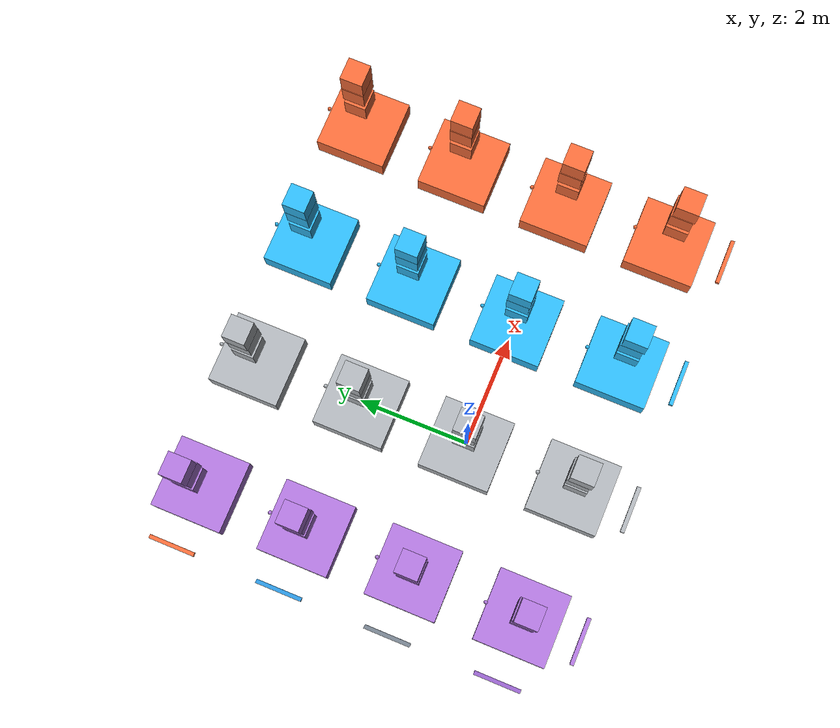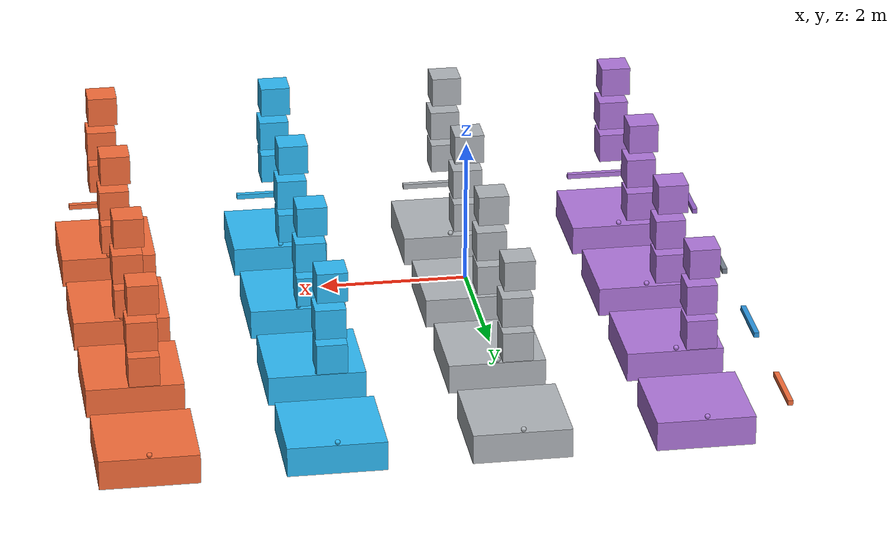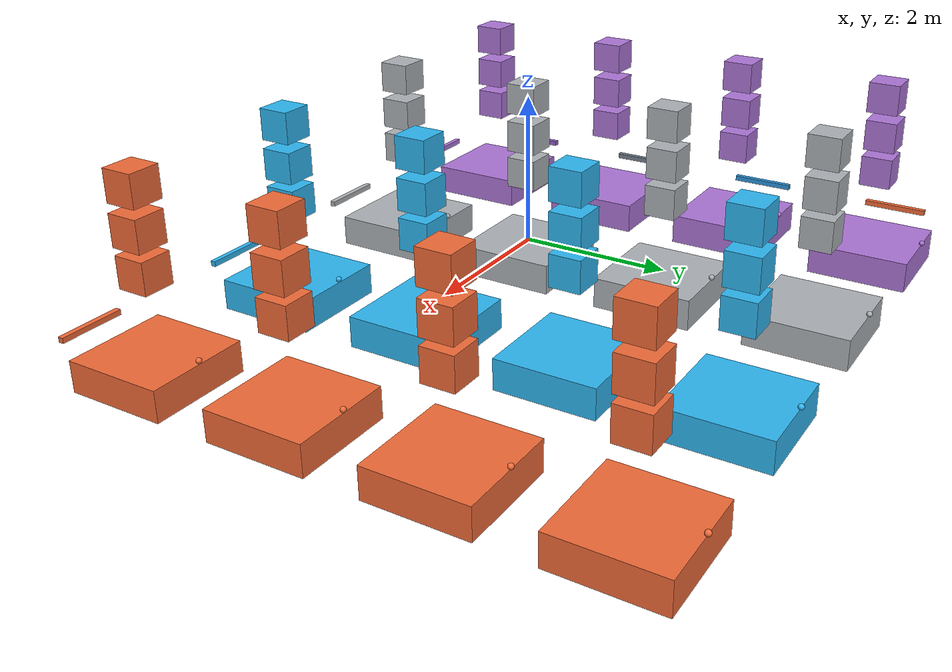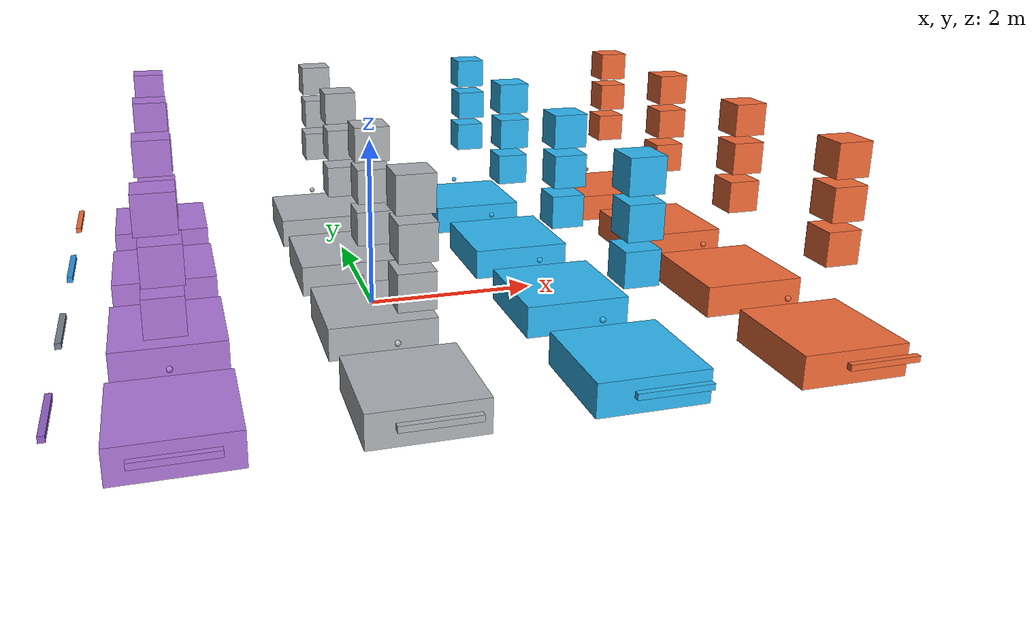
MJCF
<mujoco model="solref_solimp_grid_demo">
  <compiler angle="degree" coordinate="local"/>

  <option
    timestep="0.001"
    gravity="0 0 -9.81"
    integrator="implicitfast"
    solver="Newton"
    iterations="80"
    tolerance="1e-10">
    <flag contact="enable"/>
  </option>

  <default>
    <geom friction="1.2 0.005 0.0001"/>

    <default class="slow_ref_soft_imp">
      <geom solref="0.12 1" solimp="0.001 0.55 0.15 0.5 2"/>
    </default>
    <default class="default_ref_soft_imp">
      <geom solref="0.02 1" solimp="0.001 0.55 0.15 0.5 2"/>
    </default>
    <default class="fast_ref_soft_imp">
      <geom solref="0.004 1" solimp="0.001 0.55 0.15 0.5 2"/>
    </default>
    <default class="very_fast_ref_soft_imp">
      <geom solref="0.004 0.25" solimp="0.001 0.55 0.15 0.5 2"/>
    </default>

    <default class="slow_ref_default_imp">
      <geom solref="0.12 1" solimp="0.9 0.95 0.001 0.5 2"/>
    </default>
    <default class="default_ref_default_imp">
      <geom solref="0.02 1" solimp="0.9 0.95 0.001 0.5 2"/>
    </default>
    <default class="fast_ref_default_imp">
      <geom solref="0.004 1" solimp="0.9 0.95 0.001 0.5 2"/>
    </default>
    <default class="very_fast_ref_default_imp">
      <geom solref="0.004 0.25" solimp="0.9 0.95 0.001 0.5 2"/>
    </default>

    <default class="slow_ref_rigid_imp">
      <geom solref="0.12 1" solimp="0.995 0.999 0.0002 0.5 2"/>
    </default>
    <default class="default_ref_rigid_imp">
      <geom solref="0.02 1" solimp="0.995 0.999 0.0002 0.5 2"/>
    </default>
    <default class="fast_ref_rigid_imp">
      <geom solref="0.004 1" solimp="0.995 0.999 0.0002 0.5 2"/>
    </default>
    <default class="very_fast_ref_rigid_imp">
      <geom solref="0.004 0.25" solimp="0.995 0.999 0.0002 0.5 2"/>
    </default>

    <default class="slow_ref_very_rigid_imp">
      <geom solref="0.12 1" solimp="0.9999 0.99999 0.00005 0.5 2"/>
    </default>
    <default class="default_ref_very_rigid_imp">
      <geom solref="0.02 1" solimp="0.9999 0.99999 0.00005 0.5 2"/>
    </default>
    <default class="fast_ref_very_rigid_imp">
      <geom solref="0.004 1" solimp="0.9999 0.99999 0.00005 0.5 2"/>
    </default>
    <default class="very_fast_ref_very_rigid_imp">
      <geom solref="0.004 0.25" solimp="0.9999 0.99999 0.00005 0.5 2"/>
    </default>
  </default>

  <visual>
    <global azimuth="135" elevation="-25"/>
    <quality shadowsize="2048"/>
  </visual>

  <asset>
    <texture
      name="grid_texture"
      type="2d"
      builtin="checker"
      rgb1="0.16 0.16 0.16"
      rgb2="0.82 0.82 0.82"
      width="512"
      height="512"/>

    <material
      name="grid_material"
      texture="grid_texture"
      texrepeat="14 14"
      reflectance="0.12"/>

    <!-- Cube and pad color encode solref column. -->
    <material name="cube_slow_ref_mat" rgba="0.68 0.46 0.85 1"/>
    <material name="cube_default_ref_mat" rgba="0.68 0.70 0.72 1"/>
    <material name="cube_fast_ref_mat" rgba="0.18 0.72 0.95 1"/>
    <material name="cube_very_fast_ref_mat" rgba="0.95 0.42 0.22 1"/>
  </asset>

  <worldbody>
    <light name="key_light" pos="0 -6 7" dir="0 1 -1" diffuse="0.9 0.9 0.9"/>
    <light name="fill_light" pos="-5 3 4" dir="1 -1 -1" diffuse="0.35 0.35 0.35"/>

    <camera name="grid_view" pos="0.6 -10.2 5.6" xyaxes="1 0 0 0 0.50 0.866"/>
    <camera name="low_side" pos="0.6 -10.8 1.9" xyaxes="1 0 0 0 0.18 0.984"/>

    <!-- Visual-only grid plane. Contact happens on the sixteen colored pads. -->

    <!--
      MuJoCo XML has no arbitrary text geom. These named sites act as labels
      when the viewer's site labels are enabled.
    -->
    <site name="solref_0.12" type="box" pos="-2.4 -3.05 0.04" size="0.42 0.035 0.035" rgba="0.68 0.46 0.85 1"/>
    <site name="solref_0.02" type="box" pos="0 -3.05 0.04" size="0.42 0.035 0.035" rgba="0.68 0.70 0.72 1"/>
    <site name="solref_0.004" type="box" pos="2.4 -3.05 0.04" size="0.42 0.035 0.035" rgba="0.18 0.72 0.95 1"/>
    <site name="solref_0.004_0.25" type="box" pos="4.8 -3.05 0.04" size="0.42 0.035 0.035" rgba="0.95 0.42 0.22 1"/>

    <site name="solimp_0.001_0.55_0.15" type="box" pos="-3.55 -2.0 0.04" size="0.035 0.42 0.035" rgba="0.58 0.38 0.78 1"/>
    <site name="solimp_0.9_0.95_0.001" type="box" pos="-3.55 0 0.04" size="0.035 0.42 0.035" rgba="0.46 0.50 0.55 1"/>
    <site name="solimp_0.995_0.999_0.0002" type="box" pos="-3.55 2.0 0.04" size="0.035 0.42 0.035" rgba="0.17 0.58 0.86 1"/>
    <site name="solimp_0.9999_0.99999_0.00005" type="box" pos="-3.55 4.0 0.04" size="0.035 0.42 0.035" rgba="0.95 0.42 0.22 1"/>

    <!--
      Cell labels show the converted stiffness/damping-like values at
      d(r)=d_width:
        k = 1 / (d_width * timeconst^2 * dampratio^2)
        b = 2 / (d_width * timeconst)
    -->
    <site name="k126_b30" type="sphere" pos="-2.4 -1.33 0.06" size="0.035" rgba="0.68 0.46 0.85 1"/>
    <site name="k4.5e3_b182" type="sphere" pos="0 -1.33 0.06" size="0.035" rgba="0.68 0.70 0.72 1"/>
    <site name="k1.1e5_b909" type="sphere" pos="2.4 -1.33 0.06" size="0.035" rgba="0.18 0.72 0.95 1"/>
    <site name="k1.8e6_b909" type="sphere" pos="4.8 -1.33 0.06" size="0.035" rgba="0.95 0.42 0.22 1"/>

    <site name="k73_b18" type="sphere" pos="-2.4 0.67 0.06" size="0.035" rgba="0.68 0.46 0.85 1"/>
    <site name="k2.6e3_b105" type="sphere" pos="0 0.67 0.06" size="0.035" rgba="0.68 0.70 0.72 1"/>
    <site name="k6.6e4_b526" type="sphere" pos="2.4 0.67 0.06" size="0.035" rgba="0.18 0.72 0.95 1"/>
    <site name="k1.1e6_b526" type="sphere" pos="4.8 0.67 0.06" size="0.035" rgba="0.95 0.42 0.22 1"/>

    <site name="k70_b17" type="sphere" pos="-2.4 2.67 0.06" size="0.035" rgba="0.68 0.46 0.85 1"/>
    <site name="k2.5e3_b100" type="sphere" pos="0 2.67 0.06" size="0.035" rgba="0.68 0.70 0.72 1"/>
    <site name="k6.3e4_b501" type="sphere" pos="2.4 2.67 0.06" size="0.035" rgba="0.18 0.72 0.95 1"/>
    <site name="k1.0e6_b501" type="sphere" pos="4.8 2.67 0.06" size="0.035" rgba="0.95 0.42 0.22 1"/>

    <site name="k69_b17" type="sphere" pos="-2.4 4.67 0.06" size="0.035" rgba="0.68 0.46 0.85 1"/>
    <site name="k2.50e3_b100" type="sphere" pos="0 4.67 0.06" size="0.035" rgba="0.68 0.70 0.72 1"/>
    <site name="k6.3e4_b500" type="sphere" pos="2.4 4.67 0.06" size="0.035" rgba="0.18 0.72 0.95 1"/>
    <site name="k1.0e6_b500" type="sphere" pos="4.8 4.67 0.06" size="0.035" rgba="0.95 0.42 0.22 1"/>

    <!-- Row 1, front: soft solimp onset. -->
    <!-- Pads are thick, with their top surfaces at z=0, so very soft contacts can visibly sink without tunneling through. -->
    <geom name="pad_soft_imp_slow_ref" class="slow_ref_soft_imp" type="box" pos="-2.4 -2.0 -0.20" size="0.65 0.65 0.20" material="cube_slow_ref_mat"/>
    <body name="soft_imp_slow_ref_bottom" pos="-2.400 -2.000 1.000">
      <freejoint/>
      <geom name="soft_imp_slow_ref_bottom_geom" class="slow_ref_soft_imp" type="box" size="0.20 0.20 0.20" mass="0.8" material="cube_slow_ref_mat"/>
    </body>
    <body name="soft_imp_slow_ref_middle" pos="-2.385 -1.990 1.500">
      <freejoint/>
      <geom name="soft_imp_slow_ref_middle_geom" class="slow_ref_soft_imp" type="box" size="0.20 0.20 0.20" mass="0.8" material="cube_slow_ref_mat"/>
    </body>
    <body name="soft_imp_slow_ref_top" pos="-2.412 -2.010 2.000">
      <freejoint/>
      <geom name="soft_imp_slow_ref_top_geom" class="slow_ref_soft_imp" type="box" size="0.20 0.20 0.20" mass="0.8" material="cube_slow_ref_mat"/>
    </body>

    <geom name="pad_soft_imp_default_ref" class="default_ref_soft_imp" type="box" pos="0 -2.0 -0.20" size="0.65 0.65 0.20" material="cube_default_ref_mat"/>
    <body name="soft_imp_default_ref_bottom" pos="0.000 -2.000 1.000">
      <freejoint/>
      <geom name="soft_imp_default_ref_bottom_geom" class="default_ref_soft_imp" type="box" size="0.20 0.20 0.20" mass="0.8" material="cube_default_ref_mat"/>
    </body>
    <body name="soft_imp_default_ref_middle" pos="0.015 -1.990 1.500">
      <freejoint/>
      <geom name="soft_imp_default_ref_middle_geom" class="default_ref_soft_imp" type="box" size="0.20 0.20 0.20" mass="0.8" material="cube_default_ref_mat"/>
    </body>
    <body name="soft_imp_default_ref_top" pos="-0.012 -2.010 2.000">
      <freejoint/>
      <geom name="soft_imp_default_ref_top_geom" class="default_ref_soft_imp" type="box" size="0.20 0.20 0.20" mass="0.8" material="cube_default_ref_mat"/>
    </body>

    <geom name="pad_soft_imp_fast_ref" class="fast_ref_soft_imp" type="box" pos="2.4 -2.0 -0.20" size="0.65 0.65 0.20" material="cube_fast_ref_mat"/>
    <body name="soft_imp_fast_ref_bottom" pos="2.400 -2.000 1.000">
      <freejoint/>
      <geom name="soft_imp_fast_ref_bottom_geom" class="fast_ref_soft_imp" type="box" size="0.20 0.20 0.20" mass="0.8" material="cube_fast_ref_mat"/>
    </body>
    <body name="soft_imp_fast_ref_middle" pos="2.415 -1.990 1.500">
      <freejoint/>
      <geom name="soft_imp_fast_ref_middle_geom" class="fast_ref_soft_imp" type="box" size="0.20 0.20 0.20" mass="0.8" material="cube_fast_ref_mat"/>
    </body>
    <body name="soft_imp_fast_ref_top" pos="2.388 -2.010 2.000">
      <freejoint/>
      <geom name="soft_imp_fast_ref_top_geom" class="fast_ref_soft_imp" type="box" size="0.20 0.20 0.20" mass="0.8" material="cube_fast_ref_mat"/>
    </body>

    <geom name="pad_soft_imp_very_fast_ref" class="very_fast_ref_soft_imp" type="box" pos="4.8 -2.0 -0.20" size="0.65 0.65 0.20" material="cube_very_fast_ref_mat"/>
    <body name="soft_imp_very_fast_ref_bottom" pos="4.800 -2.000 1.000">
      <freejoint/>
      <geom name="soft_imp_very_fast_ref_bottom_geom" class="very_fast_ref_soft_imp" type="box" size="0.20 0.20 0.20" mass="0.8" material="cube_very_fast_ref_mat"/>
    </body>
    <body name="soft_imp_very_fast_ref_middle" pos="4.815 -1.990 1.500">
      <freejoint/>
      <geom name="soft_imp_very_fast_ref_middle_geom" class="very_fast_ref_soft_imp" type="box" size="0.20 0.20 0.20" mass="0.8" material="cube_very_fast_ref_mat"/>
    </body>
    <body name="soft_imp_very_fast_ref_top" pos="4.788 -2.010 2.000">
      <freejoint/>
      <geom name="soft_imp_very_fast_ref_top_geom" class="very_fast_ref_soft_imp" type="box" size="0.20 0.20 0.20" mass="0.8" material="cube_very_fast_ref_mat"/>
    </body>

    <!-- Row 2, middle: default-ish solimp. -->
    <geom name="pad_default_imp_slow_ref" class="slow_ref_default_imp" type="box" pos="-2.4 0 -0.20" size="0.65 0.65 0.20" material="cube_slow_ref_mat"/>
    <body name="default_imp_slow_ref_bottom" pos="-2.400 0.000 1.000">
      <freejoint/>
      <geom name="default_imp_slow_ref_bottom_geom" class="slow_ref_default_imp" type="box" size="0.20 0.20 0.20" mass="0.8" material="cube_slow_ref_mat"/>
    </body>
    <body name="default_imp_slow_ref_middle" pos="-2.385 0.010 1.500">
      <freejoint/>
      <geom name="default_imp_slow_ref_middle_geom" class="slow_ref_default_imp" type="box" size="0.20 0.20 0.20" mass="0.8" material="cube_slow_ref_mat"/>
    </body>
    <body name="default_imp_slow_ref_top" pos="-2.412 -0.010 2.000">
      <freejoint/>
      <geom name="default_imp_slow_ref_top_geom" class="slow_ref_default_imp" type="box" size="0.20 0.20 0.20" mass="0.8" material="cube_slow_ref_mat"/>
    </body>

    <geom name="pad_default_imp_default_ref" class="default_ref_default_imp" type="box" pos="0 0 -0.20" size="0.65 0.65 0.20" material="cube_default_ref_mat"/>
    <body name="default_imp_default_ref_bottom" pos="0.000 0.000 1.000">
      <freejoint/>
      <geom name="default_imp_default_ref_bottom_geom" class="default_ref_default_imp" type="box" size="0.20 0.20 0.20" mass="0.8" material="cube_default_ref_mat"/>
    </body>
    <body name="default_imp_default_ref_middle" pos="0.015 0.010 1.500">
      <freejoint/>
      <geom name="default_imp_default_ref_middle_geom" class="default_ref_default_imp" type="box" size="0.20 0.20 0.20" mass="0.8" material="cube_default_ref_mat"/>
    </body>
    <body name="default_imp_default_ref_top" pos="-0.012 -0.010 2.000">
      <freejoint/>
      <geom name="default_imp_default_ref_top_geom" class="default_ref_default_imp" type="box" size="0.20 0.20 0.20" mass="0.8" material="cube_default_ref_mat"/>
    </body>

    <geom name="pad_default_imp_fast_ref" class="fast_ref_default_imp" type="box" pos="2.4 0 -0.20" size="0.65 0.65 0.20" material="cube_fast_ref_mat"/>
    <body name="default_imp_fast_ref_bottom" pos="2.400 0.000 1.000">
      <freejoint/>
      <geom name="default_imp_fast_ref_bottom_geom" class="fast_ref_default_imp" type="box" size="0.20 0.20 0.20" mass="0.8" material="cube_fast_ref_mat"/>
    </body>
    <body name="default_imp_fast_ref_middle" pos="2.415 0.010 1.500">
      <freejoint/>
      <geom name="default_imp_fast_ref_middle_geom" class="fast_ref_default_imp" type="box" size="0.20 0.20 0.20" mass="0.8" material="cube_fast_ref_mat"/>
    </body>
    <body name="default_imp_fast_ref_top" pos="2.388 -0.010 2.000">
      <freejoint/>
      <geom name="default_imp_fast_ref_top_geom" class="fast_ref_default_imp" type="box" size="0.20 0.20 0.20" mass="0.8" material="cube_fast_ref_mat"/>
    </body>

    <geom name="pad_default_imp_very_fast_ref" class="very_fast_ref_default_imp" type="box" pos="4.8 0 -0.20" size="0.65 0.65 0.20" material="cube_very_fast_ref_mat"/>
    <body name="default_imp_very_fast_ref_bottom" pos="4.800 0.000 1.000">
      <freejoint/>
      <geom name="default_imp_very_fast_ref_bottom_geom" class="very_fast_ref_default_imp" type="box" size="0.20 0.20 0.20" mass="0.8" material="cube_very_fast_ref_mat"/>
    </body>
    <body name="default_imp_very_fast_ref_middle" pos="4.815 0.010 1.500">
      <freejoint/>
      <geom name="default_imp_very_fast_ref_middle_geom" class="very_fast_ref_default_imp" type="box" size="0.20 0.20 0.20" mass="0.8" material="cube_very_fast_ref_mat"/>
    </body>
    <body name="default_imp_very_fast_ref_top" pos="4.788 -0.010 2.000">
      <freejoint/>
      <geom name="default_imp_very_fast_ref_top_geom" class="very_fast_ref_default_imp" type="box" size="0.20 0.20 0.20" mass="0.8" material="cube_very_fast_ref_mat"/>
    </body>

    <!-- Row 3, back: high / near-rigid solimp onset. -->
    <geom name="pad_rigid_imp_slow_ref" class="slow_ref_rigid_imp" type="box" pos="-2.4 2.0 -0.20" size="0.65 0.65 0.20" material="cube_slow_ref_mat"/>
    <body name="rigid_imp_slow_ref_bottom" pos="-2.400 2.000 1.000">
      <freejoint/>
      <geom name="rigid_imp_slow_ref_bottom_geom" class="slow_ref_rigid_imp" type="box" size="0.20 0.20 0.20" mass="0.8" material="cube_slow_ref_mat"/>
    </body>
    <body name="rigid_imp_slow_ref_middle" pos="-2.385 2.010 1.500">
      <freejoint/>
      <geom name="rigid_imp_slow_ref_middle_geom" class="slow_ref_rigid_imp" type="box" size="0.20 0.20 0.20" mass="0.8" material="cube_slow_ref_mat"/>
    </body>
    <body name="rigid_imp_slow_ref_top" pos="-2.412 1.990 2.000">
      <freejoint/>
      <geom name="rigid_imp_slow_ref_top_geom" class="slow_ref_rigid_imp" type="box" size="0.20 0.20 0.20" mass="0.8" material="cube_slow_ref_mat"/>
    </body>

    <geom name="pad_rigid_imp_default_ref" class="default_ref_rigid_imp" type="box" pos="0 2.0 -0.20" size="0.65 0.65 0.20" material="cube_default_ref_mat"/>
    <body name="rigid_imp_default_ref_bottom" pos="0.000 2.000 1.000">
      <freejoint/>
      <geom name="rigid_imp_default_ref_bottom_geom" class="default_ref_rigid_imp" type="box" size="0.20 0.20 0.20" mass="0.8" material="cube_default_ref_mat"/>
    </body>
    <body name="rigid_imp_default_ref_middle" pos="0.015 2.010 1.500">
      <freejoint/>
      <geom name="rigid_imp_default_ref_middle_geom" class="default_ref_rigid_imp" type="box" size="0.20 0.20 0.20" mass="0.8" material="cube_default_ref_mat"/>
    </body>
    <body name="rigid_imp_default_ref_top" pos="-0.012 1.990 2.000">
      <freejoint/>
      <geom name="rigid_imp_default_ref_top_geom" class="default_ref_rigid_imp" type="box" size="0.20 0.20 0.20" mass="0.8" material="cube_default_ref_mat"/>
    </body>

    <geom name="pad_rigid_imp_fast_ref" class="fast_ref_rigid_imp" type="box" pos="2.4 2.0 -0.20" size="0.65 0.65 0.20" material="cube_fast_ref_mat"/>
    <body name="rigid_imp_fast_ref_bottom" pos="2.400 2.000 1.000">
      <freejoint/>
      <geom name="rigid_imp_fast_ref_bottom_geom" class="fast_ref_rigid_imp" type="box" size="0.20 0.20 0.20" mass="0.8" material="cube_fast_ref_mat"/>
    </body>
    <body name="rigid_imp_fast_ref_middle" pos="2.415 2.010 1.500">
      <freejoint/>
      <geom name="rigid_imp_fast_ref_middle_geom" class="fast_ref_rigid_imp" type="box" size="0.20 0.20 0.20" mass="0.8" material="cube_fast_ref_mat"/>
    </body>
    <body name="rigid_imp_fast_ref_top" pos="2.388 1.990 2.000">
      <freejoint/>
      <geom name="rigid_imp_fast_ref_top_geom" class="fast_ref_rigid_imp" type="box" size="0.20 0.20 0.20" mass="0.8" material="cube_fast_ref_mat"/>
    </body>

    <geom name="pad_rigid_imp_very_fast_ref" class="very_fast_ref_rigid_imp" type="box" pos="4.8 2.0 -0.20" size="0.65 0.65 0.20" material="cube_very_fast_ref_mat"/>
    <body name="rigid_imp_very_fast_ref_bottom" pos="4.800 2.000 1.000">
      <freejoint/>
      <geom name="rigid_imp_very_fast_ref_bottom_geom" class="very_fast_ref_rigid_imp" type="box" size="0.20 0.20 0.20" mass="0.8" material="cube_very_fast_ref_mat"/>
    </body>
    <body name="rigid_imp_very_fast_ref_middle" pos="4.815 2.010 1.500">
      <freejoint/>
      <geom name="rigid_imp_very_fast_ref_middle_geom" class="very_fast_ref_rigid_imp" type="box" size="0.20 0.20 0.20" mass="0.8" material="cube_very_fast_ref_mat"/>
    </body>
    <body name="rigid_imp_very_fast_ref_top" pos="4.788 1.990 2.000">
      <freejoint/>
      <geom name="rigid_imp_very_fast_ref_top_geom" class="very_fast_ref_rigid_imp" type="box" size="0.20 0.20 0.20" mass="0.8" material="cube_very_fast_ref_mat"/>
    </body>

    <!-- Row 4, far back: very high / extremely rigid solimp onset. -->
    <geom name="pad_very_rigid_imp_slow_ref" class="slow_ref_very_rigid_imp" type="box" pos="-2.4 4.0 -0.20" size="0.65 0.65 0.20" material="cube_slow_ref_mat"/>
    <body name="very_rigid_imp_slow_ref_bottom" pos="-2.400 4.000 1.000">
      <freejoint/>
      <geom name="very_rigid_imp_slow_ref_bottom_geom" class="slow_ref_very_rigid_imp" type="box" size="0.20 0.20 0.20" mass="0.8" material="cube_slow_ref_mat"/>
    </body>
    <body name="very_rigid_imp_slow_ref_middle" pos="-2.385 4.010 1.500">
      <freejoint/>
      <geom name="very_rigid_imp_slow_ref_middle_geom" class="slow_ref_very_rigid_imp" type="box" size="0.20 0.20 0.20" mass="0.8" material="cube_slow_ref_mat"/>
    </body>
    <body name="very_rigid_imp_slow_ref_top" pos="-2.412 3.990 2.000">
      <freejoint/>
      <geom name="very_rigid_imp_slow_ref_top_geom" class="slow_ref_very_rigid_imp" type="box" size="0.20 0.20 0.20" mass="0.8" material="cube_slow_ref_mat"/>
    </body>

    <geom name="pad_very_rigid_imp_default_ref" class="default_ref_very_rigid_imp" type="box" pos="0 4.0 -0.20" size="0.65 0.65 0.20" material="cube_default_ref_mat"/>
    <body name="very_rigid_imp_default_ref_bottom" pos="0.000 4.000 1.000">
      <freejoint/>
      <geom name="very_rigid_imp_default_ref_bottom_geom" class="default_ref_very_rigid_imp" type="box" size="0.20 0.20 0.20" mass="0.8" material="cube_default_ref_mat"/>
    </body>
    <body name="very_rigid_imp_default_ref_middle" pos="0.015 4.010 1.500">
      <freejoint/>
      <geom name="very_rigid_imp_default_ref_middle_geom" class="default_ref_very_rigid_imp" type="box" size="0.20 0.20 0.20" mass="0.8" material="cube_default_ref_mat"/>
    </body>
    <body name="very_rigid_imp_default_ref_top" pos="-0.012 3.990 2.000">
      <freejoint/>
      <geom name="very_rigid_imp_default_ref_top_geom" class="default_ref_very_rigid_imp" type="box" size="0.20 0.20 0.20" mass="0.8" material="cube_default_ref_mat"/>
    </body>

    <geom name="pad_very_rigid_imp_fast_ref" class="fast_ref_very_rigid_imp" type="box" pos="2.4 4.0 -0.20" size="0.65 0.65 0.20" material="cube_fast_ref_mat"/>
    <body name="very_rigid_imp_fast_ref_bottom" pos="2.400 4.000 1.000">
      <freejoint/>
      <geom name="very_rigid_imp_fast_ref_bottom_geom" class="fast_ref_very_rigid_imp" type="box" size="0.20 0.20 0.20" mass="0.8" material="cube_fast_ref_mat"/>
    </body>
    <body name="very_rigid_imp_fast_ref_middle" pos="2.415 4.010 1.500">
      <freejoint/>
      <geom name="very_rigid_imp_fast_ref_middle_geom" class="fast_ref_very_rigid_imp" type="box" size="0.20 0.20 0.20" mass="0.8" material="cube_fast_ref_mat"/>
    </body>
    <body name="very_rigid_imp_fast_ref_top" pos="2.388 3.990 2.000">
      <freejoint/>
      <geom name="very_rigid_imp_fast_ref_top_geom" class="fast_ref_very_rigid_imp" type="box" size="0.20 0.20 0.20" mass="0.8" material="cube_fast_ref_mat"/>
    </body>

    <geom name="pad_very_rigid_imp_very_fast_ref" class="very_fast_ref_very_rigid_imp" type="box" pos="4.8 4.0 -0.20" size="0.65 0.65 0.20" material="cube_very_fast_ref_mat"/>
    <body name="very_rigid_imp_very_fast_ref_bottom" pos="4.800 4.000 1.000">
      <freejoint/>
      <geom name="very_rigid_imp_very_fast_ref_bottom_geom" class="very_fast_ref_very_rigid_imp" type="box" size="0.20 0.20 0.20" mass="0.8" material="cube_very_fast_ref_mat"/>
    </body>
    <body name="very_rigid_imp_very_fast_ref_middle" pos="4.815 4.010 1.500">
      <freejoint/>
      <geom name="very_rigid_imp_very_fast_ref_middle_geom" class="very_fast_ref_very_rigid_imp" type="box" size="0.20 0.20 0.20" mass="0.8" material="cube_very_fast_ref_mat"/>
    </body>
    <body name="very_rigid_imp_very_fast_ref_top" pos="4.788 3.990 2.000">
      <freejoint/>
      <geom name="very_rigid_imp_very_fast_ref_top_geom" class="very_fast_ref_very_rigid_imp" type="box" size="0.20 0.20 0.20" mass="0.8" material="cube_very_fast_ref_mat"/>
    </body>
  </worldbody>

  <keyframe>
    <!-- Reset to the initial suspended stack poses. Omitted qpos defaults to qpos0. -->
    <key name="pre_drop"/>
  </keyframe>
</mujoco>
